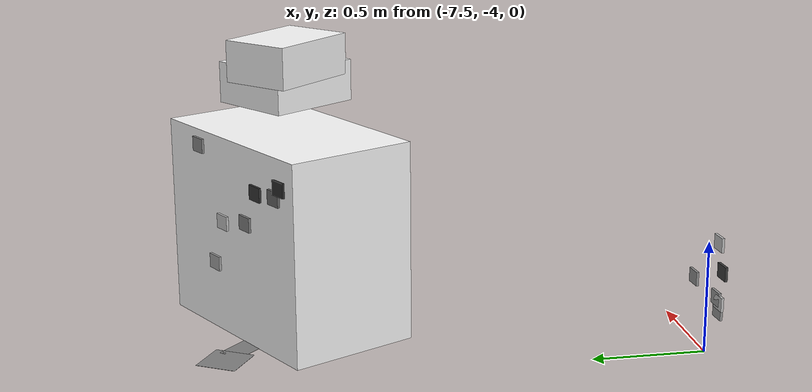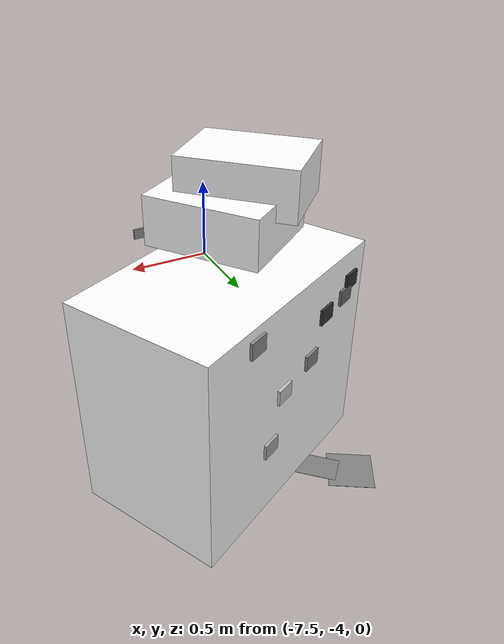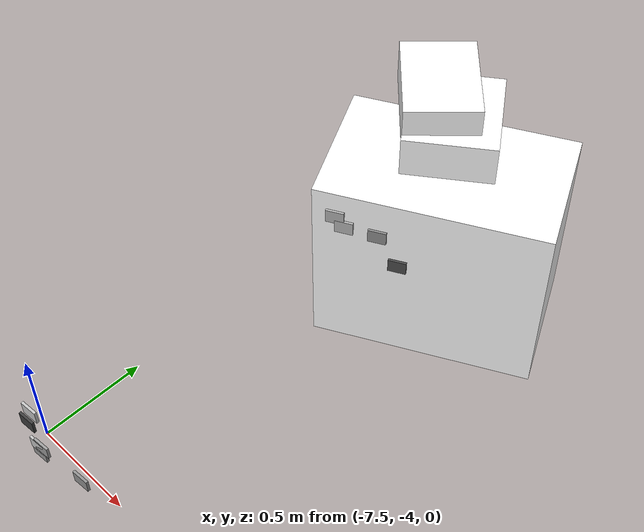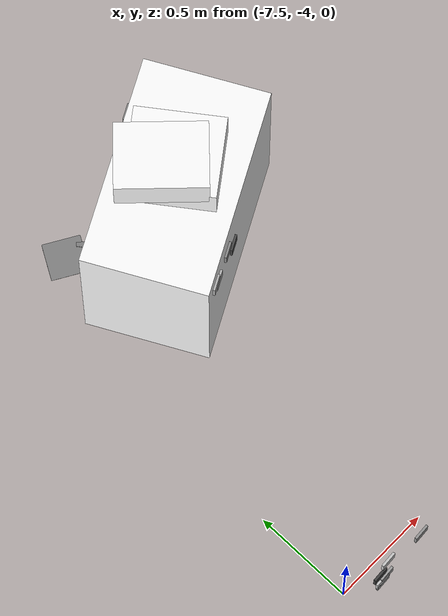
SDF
<sdf version="1.9">
 <world name="warehouse_irregular">
  <model name="concrete_patch_49">
   <static>true</static>
   <pose>-7.221992548995193 -1.9591606207287438 0.0006 0 0 -0.5320581876934574</pose>
   <link name="body">
    <visual name="surface">
     <geometry><box><size>0.18713917982319234 0.18340196789523583 0.001</size></box></geometry>
     <material>
      <ambient>0.5036144645764127 0.5036144645764127 0.5036144645764127 1</ambient>
      <diffuse>0.5036144645764127 0.5036144645764127 0.5036144645764127 1</diffuse>
     </material>
    </visual>
   </link>
  </model>
  <model name="concrete_patch_85">
   <static>true</static>
   <pose>-7.09309329534894 -2.055721966952129 0.0006 0 0 2.390536583222728</pose>
   <link name="body">
    <visual name="surface">
     <geometry><box><size>0.2188578040925232 0.11450124664299541 0.001</size></box></geometry>
     <material>
      <ambient>0.4945646644897195 0.4945646644897195 0.4945646644897195 1</ambient>
      <diffuse>0.4945646644897195 0.4945646644897195 0.4945646644897195 1</diffuse>
     </material>
    </visual>
   </link>
  </model>
  <model name="cabinet_21">
   <static>true</static>
   <pose>-6.806338343662119 -2.284867329142573 0.44831631352254686 0 0 0.48173789837865244</pose>
   <link name="body">
    <visual name="surface">
     <geometry><box><size>1 0.6 0.8966326270450937</size></box></geometry>
     <material>
      <ambient>1 1 1 1</ambient>
      <diffuse>1 1 1 1</diffuse>
      <pbr>
       <metal>
        <albedo_map>model://feature_warehouse_materials/textures/storage_21.png</albedo_map>
        <roughness>.9</roughness>
        <metalness>0</metalness>
       </metal>
      </pbr>
     </material>
    </visual>
    <collision name="solid"><geometry><box><size>1 0.6 0.8966326270450937</size></box></geometry></collision>
   </link>
  </model>
  <model name="panel_21_0_1">
   <static>true</static>
   <pose>-6.728595359217727 -1.9000520287546014 0.8264495232523479 0 0 0.48173789837865244</pose>
   <link name="body">
    <visual name="surface">
     <geometry><box><size>0.08 0.012 0.065</size></box></geometry>
     <material>
      <ambient>0.5517800304900329 0.5517800304900329 0.5517800304900329 1</ambient>
      <diffuse>0.5517800304900329 0.5517800304900329 0.5517800304900329 1</diffuse>
     </material>
    </visual>
   </link>
  </model>
  <model name="panel_21_1_-1">
   <static>true</static>
   <pose>-6.983496342591148 -2.721658964123315 0.721608645407728 0 0 0.48173789837865244</pose>
   <link name="body">
    <visual name="surface">
     <geometry><box><size>0.08 0.012 0.065</size></box></geometry>
     <material>
      <ambient>0.7047301692585742 0.7047301692585742 0.7047301692585742 1</ambient>
      <diffuse>0.7047301692585742 0.7047301692585742 0.7047301692585742 1</diffuse>
     </material>
    </visual>
   </link>
  </model>
  <model name="panel_21_1_1">
   <static>true</static>
   <pose>-7.266121533105752 -2.181082418492094 0.721608645407728 0 0 0.48173789837865244</pose>
   <link name="body">
    <visual name="surface">
     <geometry><box><size>0.08 0.012 0.065</size></box></geometry>
     <material>
      <ambient>0.41615055201265616 0.41615055201265616 0.41615055201265616 1</ambient>
      <diffuse>0.41615055201265616 0.41615055201265616 0.41615055201265616 1</diffuse>
     </material>
    </visual>
   </link>
  </model>
  <model name="panel_21_2_-1">
   <static>true</static>
   <pose>-6.856672097705088 -2.655352486969484 0.7088727901730328 0 0 0.48173789837865244</pose>
   <link name="body">
    <visual name="surface">
     <geometry><box><size>0.08 0.012 0.065</size></box></geometry>
     <material>
      <ambient>0.5478558118669402 0.5478558118669402 0.5478558118669402 1</ambient>
      <diffuse>0.5478558118669402 0.5478558118669402 0.5478558118669402 1</diffuse>
     </material>
    </visual>
   </link>
  </model>
  <model name="panel_21_2_1">
   <static>true</static>
   <pose>-7.139297288219693 -2.1147759413382627 0.7088727901730328 0 0 0.48173789837865244</pose>
   <link name="body">
    <visual name="surface">
     <geometry><box><size>0.08 0.012 0.065</size></box></geometry>
     <material>
      <ambient>0.21286708962110995 0.21286708962110995 0.21286708962110995 1</ambient>
      <diffuse>0.21286708962110995 0.21286708962110995 0.21286708962110995 1</diffuse>
     </material>
    </visual>
   </link>
  </model>
  <model name="panel_21_3_1">
   <static>true</static>
   <pose>-6.892946821556628 -1.9859785524454272 0.5150514166114747 0 0 0.48173789837865244</pose>
   <link name="body">
    <visual name="surface">
     <geometry><box><size>0.08 0.012 0.065</size></box></geometry>
     <material>
      <ambient>0.7822494629350843 0.7822494629350843 0.7822494629350843 1</ambient>
      <diffuse>0.7822494629350843 0.7822494629350843 0.7822494629350843 1</diffuse>
     </material>
    </visual>
   </link>
  </model>
  <model name="panel_21_4_-1">
   <static>true</static>
   <pose>-6.775143273535982 -2.612727442191932 0.5542013810901353 0 0 0.48173789837865244</pose>
   <link name="body">
    <visual name="surface">
     <geometry><box><size>0.08 0.012 0.065</size></box></geometry>
     <material>
      <ambient>0.29324066609927213 0.29324066609927213 0.29324066609927213 1</ambient>
      <diffuse>0.29324066609927213 0.29324066609927213 0.29324066609927213 1</diffuse>
     </material>
    </visual>
   </link>
  </model>
  <model name="panel_21_4_1">
   <static>true</static>
   <pose>-7.057768464050587 -2.0721508965607107 0.5542013810901353 0 0 0.48173789837865244</pose>
   <link name="body">
    <visual name="surface">
     <geometry><box><size>0.08 0.012 0.065</size></box></geometry>
     <material>
      <ambient>0.5161374883991166 0.5161374883991166 0.5161374883991166 1</ambient>
      <diffuse>0.5161374883991166 0.5161374883991166 0.5161374883991166 1</diffuse>
     </material>
    </visual>
   </link>
  </model>
  <model name="panel_21_5_1">
   <static>true</static>
   <pose>-6.825078558672815 -1.9504955466020357 0.3108167191399038 0 0 0.48173789837865244</pose>
   <link name="body">
    <visual name="surface">
     <geometry><box><size>0.08 0.012 0.065</size></box></geometry>
     <material>
      <ambient>0.6644986906481519 0.6644986906481519 0.6644986906481519 1</ambient>
      <diffuse>0.6644986906481519 0.6644986906481519 0.6644986906481519 1</diffuse>
     </material>
    </visual>
   </link>
  </model>
  <model name="panel_21_6_-1">
   <static>true</static>
   <pose>-7.018452252901785 -2.739934675289472 0.7707808615830708 0 0 0.48173789837865244</pose>
   <link name="body">
    <visual name="surface">
     <geometry><box><size>0.08 0.012 0.065</size></box></geometry>
     <material>
      <ambient>0.6934824844239302 0.6934824844239302 0.6934824844239302 1</ambient>
      <diffuse>0.6934824844239302 0.6934824844239302 0.6934824844239302 1</diffuse>
     </material>
    </visual>
   </link>
  </model>
  <model name="panel_21_6_1">
   <static>true</static>
   <pose>-7.301077443416389 -2.1993581296582514 0.7707808615830708 0 0 0.48173789837865244</pose>
   <link name="body">
    <visual name="surface">
     <geometry><box><size>0.08 0.012 0.065</size></box></geometry>
     <material>
      <ambient>0.18395312879547746 0.18395312879547746 0.18395312879547746 1</ambient>
      <diffuse>0.18395312879547746 0.18395312879547746 0.18395312879547746 1</diffuse>
     </material>
    </visual>
   </link>
  </model>
  <model name="carton_21_1">
   <static>true</static>
   <pose>-6.80722347459116 -2.284867329142573 1.1166326270450937 0 0 0.6317378983786525</pose>
   <link name="body">
    <visual name="surface">
     <geometry><box><size>0.38 0.42 0.18</size></box></geometry>
     <material>
      <ambient>1 1 1 1</ambient>
      <diffuse>1 1 1 1</diffuse>
      <pbr>
       <metal>
        <albedo_map>model://feature_warehouse_materials/textures/storage_21.png</albedo_map>
        <roughness>.9</roughness>
        <metalness>0</metalness>
       </metal>
      </pbr>
     </material>
    </visual>
    <collision name="solid"><geometry><box><size>0.38 0.42 0.18</size></box></geometry></collision>
   </link>
  </model>
  <model name="carton_21_2">
   <static>true</static>
   <pose>-6.890960384079636 -2.284867329142573 1.2366326270450938 0 0 0.7817378983786525</pose>
   <link name="body">
    <visual name="surface">
     <geometry><box><size>0.31 0.42 0.18</size></box></geometry>
     <material>
      <ambient>1 1 1 1</ambient>
      <diffuse>1 1 1 1</diffuse>
      <pbr>
       <metal>
        <albedo_map>model://feature_warehouse_materials/textures/storage_21.png</albedo_map>
        <roughness>.9</roughness>
        <metalness>0</metalness>
       </metal>
      </pbr>
     </material>
    </visual>
    <collision name="solid"><geometry><box><size>0.31 0.42 0.18</size></box></geometry></collision>
   </link>
  </model>
  <model name="panel_23_1_1">
   <static>true</static>
   <pose>-7.360454420410723 -4.1077351951007985 0.1275751095313873 0 0 0.06392748084731525</pose>
   <link name="body">
    <visual name="surface">
     <geometry><box><size>0.08 0.012 0.065</size></box></geometry>
     <material>
      <ambient>0.6029639636285349 0.6029639636285349 0.6029639636285349 1</ambient>
      <diffuse>0.6029639636285349 0.6029639636285349 0.6029639636285349 1</diffuse>
     </material>
    </visual>
   </link>
  </model>
  <model name="panel_23_2_1">
   <static>true</static>
   <pose>-7.093550598687171 -4.090649424870179 0.19606144349616522 0 0 0.06392748084731525</pose>
   <link name="body">
    <visual name="surface">
     <geometry><box><size>0.08 0.012 0.065</size></box></geometry>
     <material>
      <ambient>0.5795025371595326 0.5795025371595326 0.5795025371595326 1</ambient>
      <diffuse>0.5795025371595326 0.5795025371595326 0.5795025371595326 1</diffuse>
     </material>
    </visual>
   </link>
  </model>
  <model name="panel_23_3_1">
   <static>true</static>
   <pose>-7.337707594169412 -4.106279063659423 0.18086479976255804 0 0 0.06392748084731525</pose>
   <link name="body">
    <visual name="surface">
     <geometry><box><size>0.08 0.012 0.065</size></box></geometry>
     <material>
      <ambient>0.6214617935874888 0.6214617935874888 0.6214617935874888 1</ambient>
      <diffuse>0.6214617935874888 0.6214617935874888 0.6214617935874888 1</diffuse>
     </material>
    </visual>
   </link>
  </model>
  <model name="panel_23_4_1">
   <static>true</static>
   <pose>-7.342012166745217 -4.106554619616233 0.43556237536582776 0 0 0.06392748084731525</pose>
   <link name="body">
    <visual name="surface">
     <geometry><box><size>0.08 0.012 0.065</size></box></geometry>
     <material>
      <ambient>0.777713247395899 0.777713247395899 0.777713247395899 1</ambient>
      <diffuse>0.777713247395899 0.777713247395899 0.777713247395899 1</diffuse>
     </material>
    </visual>
   </link>
  </model>
  <model name="panel_23_5_1">
   <static>true</static>
   <pose>-7.3661552287810395 -4.108100130684392 0.16970066632918085 0 0 0.06392748084731525</pose>
   <link name="body">
    <visual name="surface">
     <geometry><box><size>0.08 0.012 0.065</size></box></geometry>
     <material>
      <ambient>0.7816617819438084 0.7816617819438084 0.7816617819438084 1</ambient>
      <diffuse>0.7816617819438084 0.7816617819438084 0.7816617819438084 1</diffuse>
     </material>
    </visual>
   </link>
  </model>
  <model name="panel_23_6_1">
   <static>true</static>
   <pose>-7.389580584370355 -4.109599697983897 0.3186064492006164 0 0 0.06392748084731525</pose>
   <link name="body">
    <visual name="surface">
     <geometry><box><size>0.08 0.012 0.065</size></box></geometry>
     <material>
      <ambient>0.24594043082176742 0.24594043082176742 0.24594043082176742 1</ambient>
      <diffuse>0.24594043082176742 0.24594043082176742 0.24594043082176742 1</diffuse>
     </material>
    </visual>
   </link>
  </model>
 </world>
</sdf>
